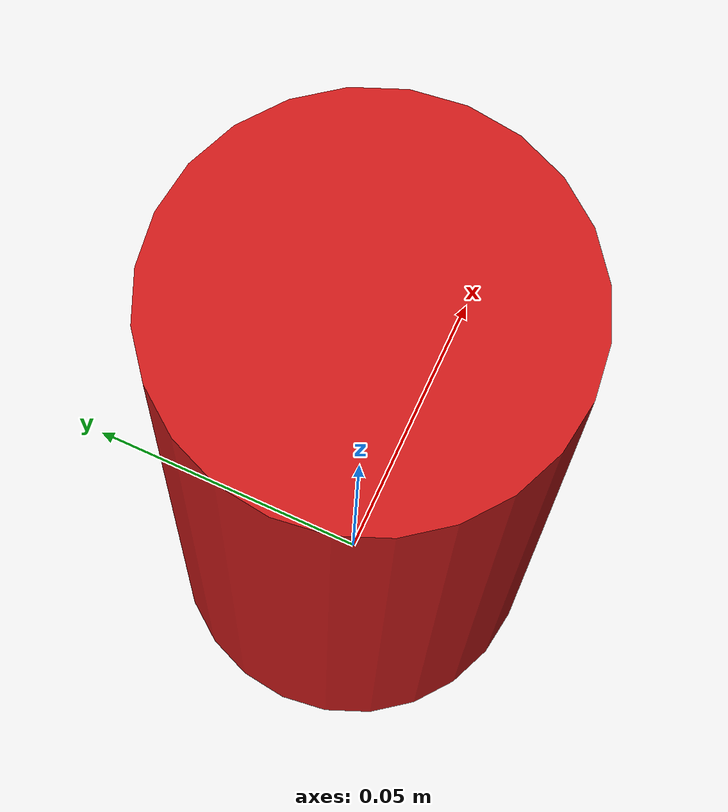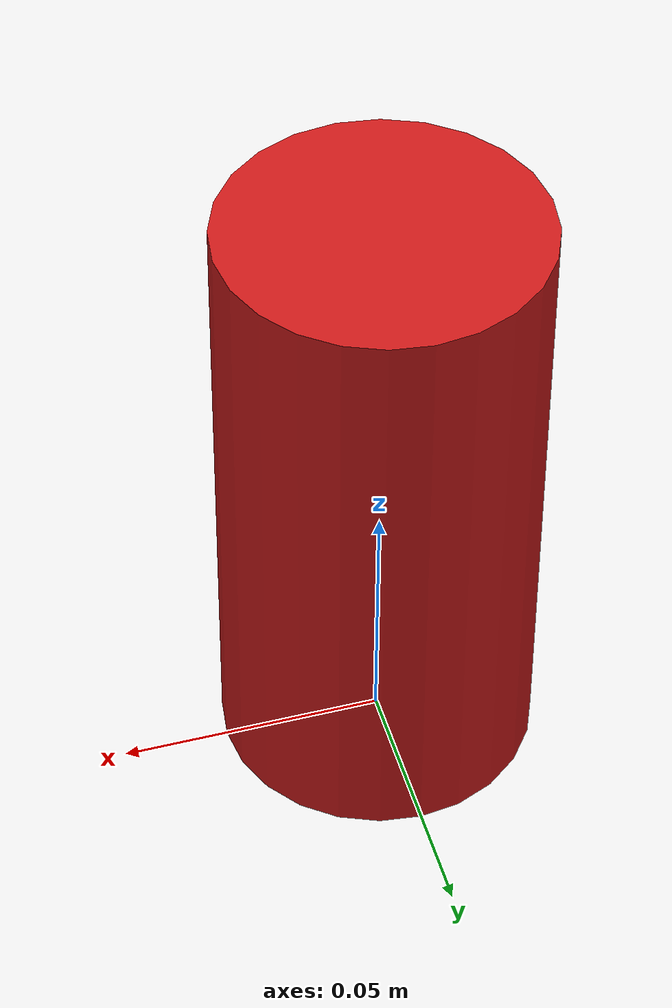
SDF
<?xml version="1.0" ?>
<sdf version="1.5">
    <model name="small_coke_can">
        <link name="link">
            <inertial>
                <pose>0 0 0.02 0 0 0</pose>
                <mass>0.150</mass>
                <inertia>
                    <ixx>0.000147</ixx>
                    <ixy>0</ixy>
                    <ixz>0</ixz>
                    <iyy>0.000147</iyy>
                    <iyz>0</iyz>
                    <izz>0.000054</izz>
                </inertia>
            </inertial>

            <!-- コリジョン: やや小さめの円柱 (半径 0.030, 高さ 0.12) -->
            <collision name="collision">
                <pose>0 0 0.06 0 0 0</pose>
                <geometry>
                    <cylinder>
                        <radius>0.030</radius>
                        <length>0.12</length>
                    </cylinder>
                </geometry>
                <surface>
                    <friction>
                        <ode>
                            <mu>3.0</mu>
                            <mu2>3.0</mu2>
                        </ode>
                    </friction>
                    <contact>
                        <ode>
                            <kp>10000.0</kp>
                            <kd>100.0</kd>
                            <min_depth>0.003</min_depth>
                            <max_vel>0.01</max_vel>
                        </ode>
                    </contact>
                </surface>
            </collision>

            <!-- Y_UP DAEメッシュはIgnition GazeboでZ方向16cm地中に埋まるためcylinderに置換 -->
            <visual name="visual">
                <pose>0 0 0.06 0 0 0</pose>
                <geometry>
                    <cylinder>
                        <radius>0.030</radius>
                        <length>0.12</length>
                    </cylinder>
                </geometry>
                <material>
                    <ambient>0.8 0.1 0.1 1</ambient>
                    <diffuse>0.8 0.1 0.1 1</diffuse>
                    <specular>0.3 0.3 0.3 1</specular>
                </material>
            </visual>
        </link>
    </model>
</sdf>
